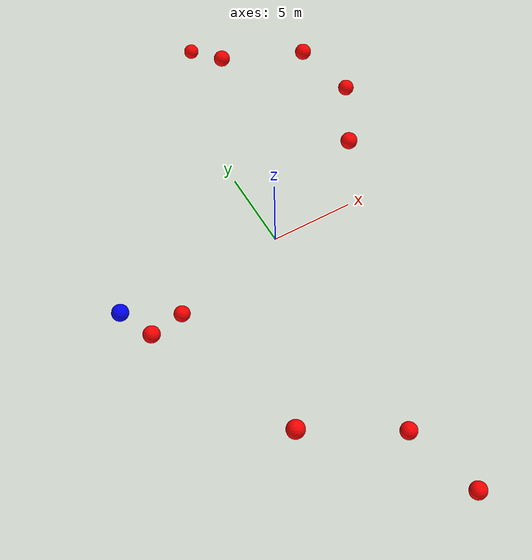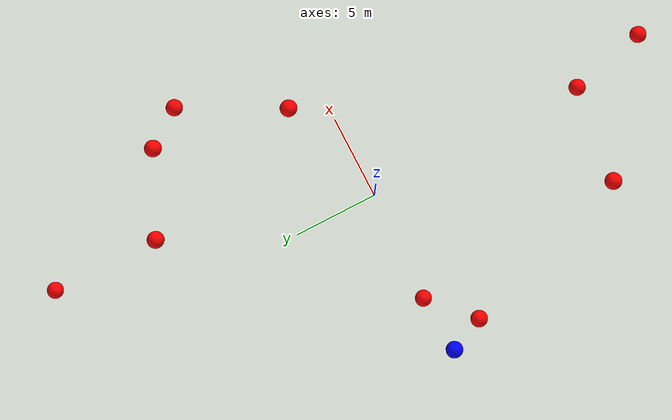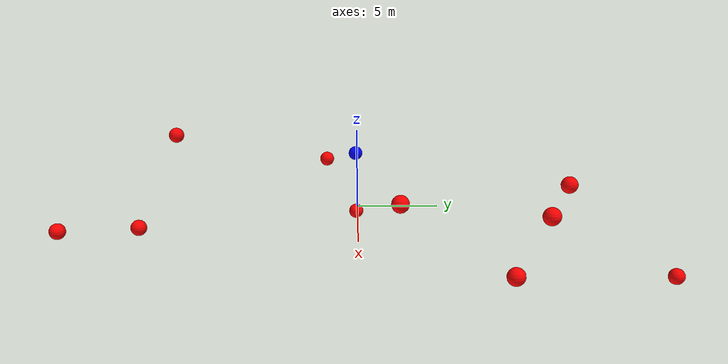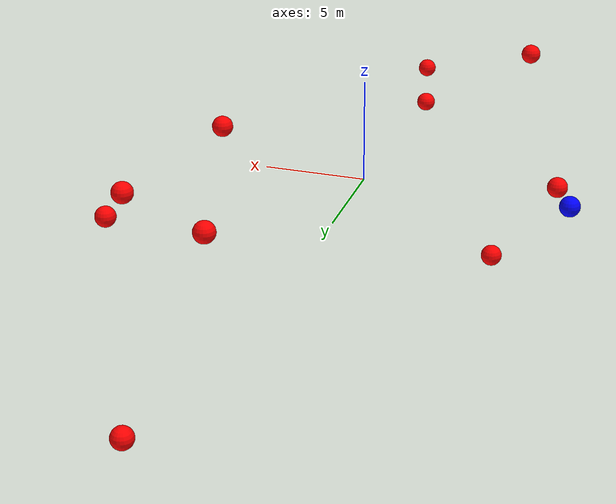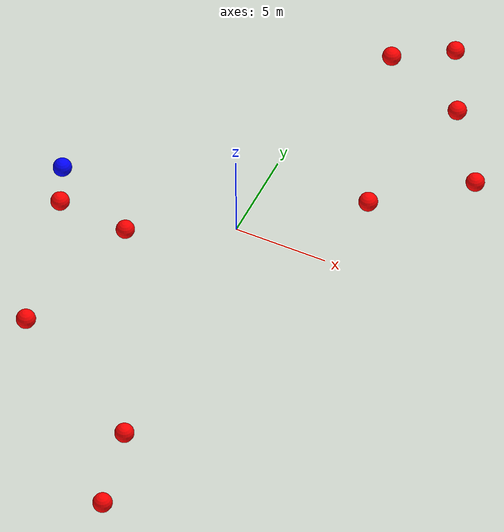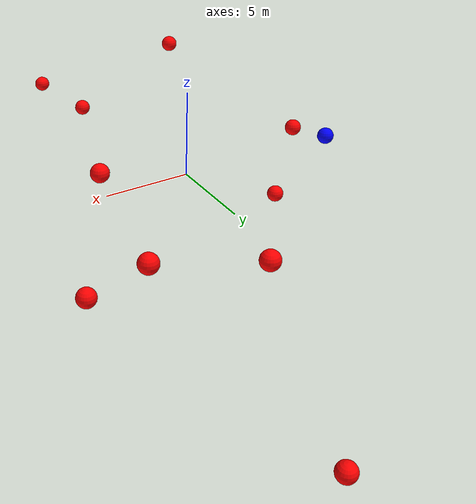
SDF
<?xml version="1.0" ?>
<sdf version="1.8">
    <world name="3d_world">
        <physics name="1ms" type="ode">
            <max_step_size>0.001</max_step_size>
            <real_time_factor>1.0</real_time_factor>
            <real_time_update_rate>1000.0</real_time_update_rate>
        </physics>
        <gravity>0 0 0</gravity>

        <plugin
            filename="gz-sim-physics-system"
            name="gz::sim::v8::systems::Physics">
        </plugin>
        <plugin
            filename="libignition-gazebo-user-commands-system.so"
            name="ignition::gazebo::systems::UserCommands">
        </plugin>
        <plugin
            filename="gz-sim-scene-broadcaster-system"
            name="gz::sim::systems::SceneBroadcaster">
        </plugin>
        <plugin
            filename="gz-sim-sensors-system"
            name="gz::sim::systems::Sensors">
            <render_engine>ogre2</render_engine>
        </plugin>

        <light type="directional" name="sun">
            <cast_shadows>true</cast_shadows>
            <pose>0 0 10 0 0 0</pose>
            <diffuse>0.8 0.8 0.8 1</diffuse>
            <specular>0.2 0.2 0.2 1</specular>
            <attenuation>
                <range>1000</range>
                <constant>0.9</constant>
                <linear>0.01</linear>
                <quadratic>0.001</quadratic>
            </attenuation>
            <direction>-0.5 0.1 -0.9</direction>
        </light>

        <!-- AGENTE -->
        <model name='agente' canonical_link='chassis'>
            <pose relative_to='world'>-10.0 0 0.0 0 0 0</pose>
            <link name='chassis'>
                <pose relative_to='__model__'>0.0 0 0.0 0 0 0</pose>
                <inertial>
                    <mass>1.14395</mass>
                    <inertia>
                        <ixx>0.095329</ixx>
                        <ixy>0</ixy>
                        <ixz>0</ixz>
                        <iyy>0.381317</iyy>
                        <iyz>0</iyz>
                        <izz>0.476646</izz>
                    </inertia>
                </inertial>
                <visual name='visual'>
                    <geometry>
                        <sphere>
                            <radius>0.5</radius>
                        </sphere>
                    </geometry>
                    <material>
                        <ambient>0.0 0.0 1.0 1</ambient>
                        <diffuse>0.0 0.0 1.0 1</diffuse>
                        <specular>0.0 0.0 1.0 1</specular>
                    </material>
                </visual>
                <collision name='collision'>
                    <geometry>
                        <sphere>
                            <radius>0.5</radius>
                        </sphere>
                    </geometry>
                </collision>
                <enable_gravity>false</enable_gravity>
            </link>

            <link name='lidar_link'>
                <pose relative_to='chassis'>0.0 0 0.1 0 0 0</pose>
                <inertial>
                    <mass>0.1</mass>
                    <inertia>
                        <ixx>0.000166667</ixx>
                        <iyy>0.000166667</iyy>
                        <izz>0.000166667</izz>
                    </inertia>
                </inertial>
                <collision name='collision'>
                    <geometry>
                        <cylinder>
                            <radius>0.05</radius>
                            <length>0.1</length>
                        </cylinder>
                    </geometry>
                </collision>
                <visual name='visual'>
                    <geometry>
                        <cylinder>
                            <radius>0.05</radius>
                            <length>0.1</length>
                        </cylinder>
                    </geometry>
                    <material>
                        <ambient>0.0 1.0 0.0 1</ambient>
                        <diffuse>0.0 1.0 0.0 1</diffuse>
                        <specular>0.0 1.0 0.0 1</specular>
                    </material>
                </visual>
                <sensor name="lidar" type="gpu_lidar">
                    <topic>scan</topic>
                    <update_rate>10</update_rate>
                    <lidar>
                        <scan>
                            <horizontal>
                                <samples>5000</samples>
                                <resolution>1</resolution>
                                <min_angle>-3.14159</min_angle>
                                <max_angle>3.14159</max_angle>
                            </horizontal>
                        </scan>
                        <range>
                            <min>0.1</min>
                            <max>10.0</max>
                            <resolution>0.01</resolution>
                        </range>
                    </lidar>
                    <visualize>true</visualize>
                    <always_on>true</always_on>
                    <update_rate>10</update_rate>
                    <pose_frame>lidar</pose_frame>
                </sensor>
                <enable_gravity>false</enable_gravity>
            </link>

            <joint name="lidar_joint" type="fixed">
                <parent>chassis</parent>
                <child>lidar_link</child>
            </joint>

            <plugin
                filename="ignition-gazebo-joint-state-publisher-system"
                name="ignition::gazebo::systems::JointStatePublisher">
            </plugin>
            <plugin
                filename="ignition-gazebo-odometry-publisher-system"
                name="ignition::gazebo::systems::OdometryPublisher">
                <dimensions>3</dimensions>
            </plugin>
            <plugin
                filename="ignition-gazebo-velocity-control-system"
                name="ignition::gazebo::systems::VelocityControl">
                <initial_linear>0.0 0 0</initial_linear>
                <initial_angular>0 0 0.0</initial_angular>
            </plugin>
            <plugin
                filename="libignition-gazebo-pose-publisher-system.so"
                name="ignition::gazebo::systems::PosePublisher">
                <topic>/agente/pose</topic>
                <frame_id>agente</frame_id>
                <update_rate>30</update_rate>
            </plugin>
        </model>

        <!-- OBSTACLE 1 -->
        <model name='obstacle_1' canonical_link='obstacle'>
            <static>false</static>
            <pose relative_to='world'>1.50 -18.28 -0.82 0 0 0</pose>
            <link name='obstacle'>
                <pose relative_to='__model__'>0.0 0 0.0 0 0 0</pose>
                <visual name='visual'>
                    <geometry>
                        <sphere>
                            <radius>0.50</radius>
                        </sphere>
                    </geometry>
                    <material>
                        <ambient>1.0 0.0 0.0 1</ambient>
                        <diffuse>1.0 0.0 0.0 1</diffuse>
                        <specular>1.0 0.0 0.0 1</specular>
                    </material>
                </visual>
                <collision name='collision'>
                    <geometry>
                        <sphere>
                            <radius>0.50</radius>
                        </sphere>
                    </geometry>
                </collision>
                <enable_gravity>false</enable_gravity>
            </link>

            <plugin
                filename="ignition-gazebo-velocity-control-system"
                name="ignition::gazebo::systems::VelocityControl">
                <initial_linear>0.59 1.91 0.09</initial_linear>
                <initial_angular>0 0 0</initial_angular>
            </plugin>

            <plugin
                filename="ignition-gazebo-odometry-publisher-system"
                name="ignition::gazebo::systems::OdometryPublisher">
                <dimensions>3</dimensions>
            </plugin>
        </model>

        <!-- OBSTACLE 2 -->
        <model name='obstacle_2' canonical_link='obstacle'>
            <static>false</static>
            <pose relative_to='world'>6.34 2.25 2.88 0 0 0</pose>
            <link name='obstacle'>
                <pose relative_to='__model__'>0.0 0 0.0 0 0 0</pose>
                <visual name='visual'>
                    <geometry>
                        <sphere>
                            <radius>0.50</radius>
                        </sphere>
                    </geometry>
                    <material>
                        <ambient>1.0 0.0 0.0 1</ambient>
                        <diffuse>1.0 0.0 0.0 1</diffuse>
                        <specular>1.0 0.0 0.0 1</specular>
                    </material>
                </visual>
                <collision name='collision'>
                    <geometry>
                        <sphere>
                            <radius>0.50</radius>
                        </sphere>
                    </geometry>
                </collision>
                <enable_gravity>false</enable_gravity>
            </link>

            <plugin
                filename="ignition-gazebo-velocity-control-system"
                name="ignition::gazebo::systems::VelocityControl">
                <initial_linear>0.01 -0.34 -0.44</initial_linear>
                <initial_angular>0 0 0</initial_angular>
            </plugin>

            <plugin
                filename="ignition-gazebo-odometry-publisher-system"
                name="ignition::gazebo::systems::OdometryPublisher">
                <dimensions>3</dimensions>
            </plugin>
        </model>

        <!-- OBSTACLE 3 -->
        <model name='obstacle_3' canonical_link='obstacle'>
            <static>false</static>
            <pose relative_to='world'>3.11 12.29 2.60 0 0 0</pose>
            <link name='obstacle'>
                <pose relative_to='__model__'>0.0 0 0.0 0 0 0</pose>
                <visual name='visual'>
                    <geometry>
                        <sphere>
                            <radius>0.50</radius>
                        </sphere>
                    </geometry>
                    <material>
                        <ambient>1.0 0.0 0.0 1</ambient>
                        <diffuse>1.0 0.0 0.0 1</diffuse>
                        <specular>1.0 0.0 0.0 1</specular>
                    </material>
                </visual>
                <collision name='collision'>
                    <geometry>
                        <sphere>
                            <radius>0.50</radius>
                        </sphere>
                    </geometry>
                </collision>
                <enable_gravity>false</enable_gravity>
            </link>

            <plugin
                filename="ignition-gazebo-velocity-control-system"
                name="ignition::gazebo::systems::VelocityControl">
                <initial_linear>-1.08 -1.65 -0.35</initial_linear>
                <initial_angular>0 0 0</initial_angular>
            </plugin>

            <plugin
                filename="ignition-gazebo-odometry-publisher-system"
                name="ignition::gazebo::systems::OdometryPublisher">
                <dimensions>3</dimensions>
            </plugin>
        </model>

        <!-- OBSTACLE 4 -->
        <model name='obstacle_4' canonical_link='obstacle'>
            <static>false</static>
            <pose relative_to='world'>7.81 10.11 2.73 0 0 0</pose>
            <link name='obstacle'>
                <pose relative_to='__model__'>0.0 0 0.0 0 0 0</pose>
                <visual name='visual'>
                    <geometry>
                        <sphere>
                            <radius>0.50</radius>
                        </sphere>
                    </geometry>
                    <material>
                        <ambient>1.0 0.0 0.0 1</ambient>
                        <diffuse>1.0 0.0 0.0 1</diffuse>
                        <specular>1.0 0.0 0.0 1</specular>
                    </material>
                </visual>
                <collision name='collision'>
                    <geometry>
                        <sphere>
                            <radius>0.50</radius>
                        </sphere>
                    </geometry>
                </collision>
                <enable_gravity>false</enable_gravity>
            </link>

            <plugin
                filename="ignition-gazebo-velocity-control-system"
                name="ignition::gazebo::systems::VelocityControl">
                <initial_linear>-1.27 -1.49 -0.40</initial_linear>
                <initial_angular>0 0 0</initial_angular>
            </plugin>

            <plugin
                filename="ignition-gazebo-odometry-publisher-system"
                name="ignition::gazebo::systems::OdometryPublisher">
                <dimensions>3</dimensions>
            </plugin>
        </model>

        <!-- OBSTACLE 5 -->
        <model name='obstacle_5' canonical_link='obstacle'>
            <static>false</static>
            <pose relative_to='world'>3.92 19.15 -3.07 0 0 0</pose>
            <link name='obstacle'>
                <pose relative_to='__model__'>0.0 0 0.0 0 0 0</pose>
                <visual name='visual'>
                    <geometry>
                        <sphere>
                            <radius>0.50</radius>
                        </sphere>
                    </geometry>
                    <material>
                        <ambient>1.0 0.0 0.0 1</ambient>
                        <diffuse>1.0 0.0 0.0 1</diffuse>
                        <specular>1.0 0.0 0.0 1</specular>
                    </material>
                </visual>
                <collision name='collision'>
                    <geometry>
                        <sphere>
                            <radius>0.50</radius>
                        </sphere>
                    </geometry>
                </collision>
                <enable_gravity>false</enable_gravity>
            </link>

            <plugin
                filename="ignition-gazebo-velocity-control-system"
                name="ignition::gazebo::systems::VelocityControl">
                <initial_linear>0.14 -1.97 0.32</initial_linear>
                <initial_angular>0 0 0</initial_angular>
            </plugin>

            <plugin
                filename="ignition-gazebo-odometry-publisher-system"
                name="ignition::gazebo::systems::OdometryPublisher">
                <dimensions>3</dimensions>
            </plugin>
        </model>

        <!-- OBSTACLE 6 -->
        <model name='obstacle_6' canonical_link='obstacle'>
            <static>false</static>
            <pose relative_to='world'>-6.43 0.00 -3.12 0 0 0</pose>
            <link name='obstacle'>
                <pose relative_to='__model__'>0.0 0 0.0 0 0 0</pose>
                <visual name='visual'>
                    <geometry>
                        <sphere>
                            <radius>0.50</radius>
                        </sphere>
                    </geometry>
                    <material>
                        <ambient>1.0 0.0 0.0 1</ambient>
                        <diffuse>1.0 0.0 0.0 1</diffuse>
                        <specular>1.0 0.0 0.0 1</specular>
                    </material>
                </visual>
                <collision name='collision'>
                    <geometry>
                        <sphere>
                            <radius>0.50</radius>
                        </sphere>
                    </geometry>
                </collision>
                <enable_gravity>false</enable_gravity>
            </link>

            <plugin
                filename="ignition-gazebo-velocity-control-system"
                name="ignition::gazebo::systems::VelocityControl">
                <initial_linear>1.80 -0.00 0.61</initial_linear>
                <initial_angular>0 0 0</initial_angular>
            </plugin>

            <plugin
                filename="ignition-gazebo-odometry-publisher-system"
                name="ignition::gazebo::systems::OdometryPublisher">
                <dimensions>3</dimensions>
            </plugin>
        </model>

        <!-- OBSTACLE 7 -->
        <model name='obstacle_7' canonical_link='obstacle'>
            <static>false</static>
            <pose relative_to='world'>-5.73 -12.15 2.90 0 0 0</pose>
            <link name='obstacle'>
                <pose relative_to='__model__'>0.0 0 0.0 0 0 0</pose>
                <visual name='visual'>
                    <geometry>
                        <sphere>
                            <radius>0.50</radius>
                        </sphere>
                    </geometry>
                    <material>
                        <ambient>1.0 0.0 0.0 1</ambient>
                        <diffuse>1.0 0.0 0.0 1</diffuse>
                        <specular>1.0 0.0 0.0 1</specular>
                    </material>
                </visual>
                <collision name='collision'>
                    <geometry>
                        <sphere>
                            <radius>0.50</radius>
                        </sphere>
                    </geometry>
                </collision>
                <enable_gravity>false</enable_gravity>
            </link>

            <plugin
                filename="ignition-gazebo-velocity-control-system"
                name="ignition::gazebo::systems::VelocityControl">
                <initial_linear>1.03 1.67 -0.40</initial_linear>
                <initial_angular>0 0 0</initial_angular>
            </plugin>

            <plugin
                filename="ignition-gazebo-odometry-publisher-system"
                name="ignition::gazebo::systems::OdometryPublisher">
                <dimensions>3</dimensions>
            </plugin>
        </model>

        <!-- OBSTACLE 8 -->
        <model name='obstacle_8' canonical_link='obstacle'>
            <static>false</static>
            <pose relative_to='world'>0.38 -13.66 -1.14 0 0 0</pose>
            <link name='obstacle'>
                <pose relative_to='__model__'>0.0 0 0.0 0 0 0</pose>
                <visual name='visual'>
                    <geometry>
                        <sphere>
                            <radius>0.50</radius>
                        </sphere>
                    </geometry>
                    <material>
                        <ambient>1.0 0.0 0.0 1</ambient>
                        <diffuse>1.0 0.0 0.0 1</diffuse>
                        <specular>1.0 0.0 0.0 1</specular>
                    </material>
                </visual>
                <collision name='collision'>
                    <geometry>
                        <sphere>
                            <radius>0.50</radius>
                        </sphere>
                    </geometry>
                </collision>
                <enable_gravity>false</enable_gravity>
            </link>

            <plugin
                filename="ignition-gazebo-velocity-control-system"
                name="ignition::gazebo::systems::VelocityControl">
                <initial_linear>0.69 1.87 0.16</initial_linear>
                <initial_angular>0 0 0</initial_angular>
            </plugin>

            <plugin
                filename="ignition-gazebo-odometry-publisher-system"
                name="ignition::gazebo::systems::OdometryPublisher">
                <dimensions>3</dimensions>
            </plugin>
        </model>

        <!-- OBSTACLE 9 -->
        <model name='obstacle_9' canonical_link='obstacle'>
            <static>false</static>
            <pose relative_to='world'>9.84 8.00 0.29 0 0 0</pose>
            <link name='obstacle'>
                <pose relative_to='__model__'>0.0 0 0.0 0 0 0</pose>
                <visual name='visual'>
                    <geometry>
                        <sphere>
                            <radius>0.50</radius>
                        </sphere>
                    </geometry>
                    <material>
                        <ambient>1.0 0.0 0.0 1</ambient>
                        <diffuse>1.0 0.0 0.0 1</diffuse>
                        <specular>1.0 0.0 0.0 1</specular>
                    </material>
                </visual>
                <collision name='collision'>
                    <geometry>
                        <sphere>
                            <radius>0.50</radius>
                        </sphere>
                    </geometry>
                </collision>
                <enable_gravity>false</enable_gravity>
            </link>

            <plugin
                filename="ignition-gazebo-velocity-control-system"
                name="ignition::gazebo::systems::VelocityControl">
                <initial_linear>-0.59 -1.25 -0.05</initial_linear>
                <initial_angular>0 0 0</initial_angular>
            </plugin>

            <plugin
                filename="ignition-gazebo-odometry-publisher-system"
                name="ignition::gazebo::systems::OdometryPublisher">
                <dimensions>3</dimensions>
            </plugin>
        </model>

        <!-- OBSTACLE 10 -->
        <model name='obstacle_10' canonical_link='obstacle'>
            <static>false</static>
            <pose relative_to='world'>-9.07 -2.09 -0.08 0 0 0</pose>
            <link name='obstacle'>
                <pose relative_to='__model__'>0.0 0 0.0 0 0 0</pose>
                <visual name='visual'>
                    <geometry>
                        <sphere>
                            <radius>0.50</radius>
                        </sphere>
                    </geometry>
                    <material>
                        <ambient>1.0 0.0 0.0 1</ambient>
                        <diffuse>1.0 0.0 0.0 1</diffuse>
                        <specular>1.0 0.0 0.0 1</specular>
                    </material>
                </visual>
                <collision name='collision'>
                    <geometry>
                        <sphere>
                            <radius>0.50</radius>
                        </sphere>
                    </geometry>
                </collision>
                <enable_gravity>false</enable_gravity>
            </link>

            <plugin
                filename="ignition-gazebo-velocity-control-system"
                name="ignition::gazebo::systems::VelocityControl">
                <initial_linear>1.98 0.30 0.01</initial_linear>
                <initial_angular>0 0 0</initial_angular>
            </plugin>

            <plugin
                filename="ignition-gazebo-odometry-publisher-system"
                name="ignition::gazebo::systems::OdometryPublisher">
                <dimensions>3</dimensions>
            </plugin>
        </model>

    </world>
</sdf>
